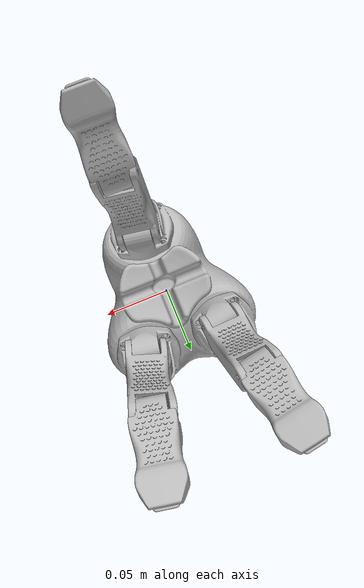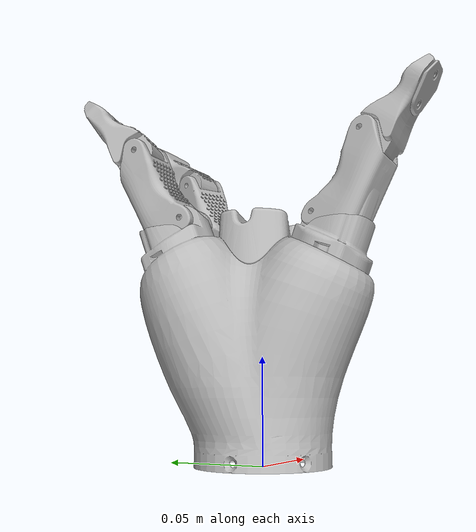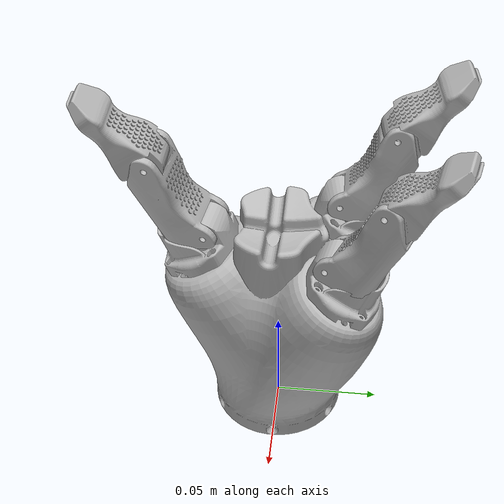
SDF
<sdf version='1.4'>
  <model name='kinova_kg3'>
    <link name='jaco_link_hand'>
      <pose>0 0 0 0 -0 0</pose>
      <inertial>
        <pose>-0.000227691 0.00425469 0.0759514 0 -0 0</pose>
        <mass>0.49</mass>
        <inertia>
          <ixx>0.000215057</ixx>
          <ixy>1.82062e-08</ixy>
          <ixz>1.11116e-07</ixz>
          <iyy>0.00018746</iyy>
          <iyz>1.20191e-06</iyz>
          <izz>0.000158164</izz>
        </inertia>
      </inertial>
      <collision name='jaco_link_hand_collision'>
        <pose>0 0 0 0 -0 0</pose>
        <geometry>
          <mesh>
            <scale>1 1 1</scale>
            <uri>model://kinova_kg3/meshes/jaco_link_hand.STL</uri>
          </mesh>
        </geometry>
        <surface>
          <contact>
            <ode/>
          </contact>
          <friction>
            <ode/>
          </friction>
        </surface>
      </collision>
      <visual name='jaco_link_hand_visual'>
        <pose>0 0 0 0 -0 0</pose>
        <geometry>
          <mesh>
            <scale>1 1 1</scale>
            <uri>model://kinova_kg3/meshes/jaco_link_hand.STL</uri>
          </mesh>
        </geometry>
      </visual>
      <gravity>1</gravity>
      <velocity_decay>
        <linear>0</linear>
        <angular>0</angular>
      </velocity_decay>
      <self_collide>0</self_collide>
    </link>
    <link name='jaco_link_finger_1'>
      <pose>0.00228309 -0.0312567 0.11443 1.57925 -0.980345 -1.60227</pose>
      <inertial>
        <pose>0.0208281 -0.00622581 -1.06167e-07 0 -0 0</pose>
        <mass>0.05</mass>
        <inertia>
          <ixx>1.04332e-06</ixx>
          <ixy>1.35201e-07</ixy>
          <ixz>-1.63982e-11</ixz>
          <iyy>2.40167e-06</iyy>
          <iyz>-2.0631e-12</iyz>
          <izz>2.18919e-06</izz>
        </inertia>
      </inertial>
      <collision name='jaco_link_finger_1_collision'>
        <pose>0 0 0 0 -0 0</pose>
        <geometry>
          <mesh>
            <scale>1 1 1</scale>
            <uri>model://kinova_kg3/meshes/jaco_link_finger_2.STL</uri>
          </mesh>
        </geometry>
        <surface>
          <contact>
            <ode>
              <kp>1e+06</kp>
              <kd>1</kd>
            </ode>
          </contact>
          <friction>
            <ode>
              <mu>500</mu>
              <mu2>500</mu2>
            </ode>
          </friction>
        </surface>
      </collision>
      <visual name='jaco_link_finger_1_visual'>
        <pose>0 0 0 0 -0 0</pose>
        <geometry>
          <mesh>
            <scale>1 1 1</scale>
            <uri>model://kinova_kg3/meshes/jaco_link_finger_2.STL</uri>
          </mesh>
        </geometry>
      </visual>
      <gravity>0</gravity>
      <velocity_decay>
        <linear>0</linear>
        <angular>0</angular>
      </velocity_decay>
      <self_collide>0</self_collide>
    </link>
    <joint name='jaco_joint_finger_1' type='revolute'>
      <child>jaco_link_finger_1</child>
      <parent>jaco_link_hand</parent>
      <axis>
        <xyz>-0.99969 0.0244463 -0.004708</xyz>
        <limit>
          <lower>0</lower>
          <upper>0.872665</upper>
          <effort>30</effort>
          <velocity>5</velocity>
        </limit>
        <dynamics/>
      </axis>
      <physics>
        <provide_feedback>1</provide_feedback>
        <ode>
          <provide_feedback>1</provide_feedback>
          <fudge_factor>1</fudge_factor>
          <limit>
            <cfm>0</cfm>
            <erp>0.2</erp>
          </limit>
        </ode>
      </physics>
    </joint>
    <link name='jaco_link_finger_tip_1'>
      <pose>0.00151043 -0.0557978 0.151066 1.57925 -0.980345 -1.60227</pose>
      <inertial>
        <pose>0.0140499 -0.00605434 2.02852e-07 0 -0 0</pose>
        <mass>0.03</mass>
        <inertia>
          <ixx>6.83326e-07</ixx>
          <ixy>-2.81123e-07</ixy>
          <ixz>-7.46392e-12</ixz>
          <iyy>2.46927e-06</iyy>
          <iyz>1.87459e-11</iyz>
          <izz>2.36577e-06</izz>
        </inertia>
      </inertial>
      <collision name='jaco_link_finger_tip_1_collision'>
        <pose>0 0 0 0 -0 0</pose>
        <geometry>
          <mesh>
            <scale>1 1 1</scale>
            <uri>model://kinova_kg3/meshes/jaco_link_finger_tip_2.STL</uri>
          </mesh>
        </geometry>
        <surface>
          <contact>
            <ode>
              <kp>1e+07</kp>
              <kd>1</kd>
            </ode>
          </contact>
          <friction>
            <ode>
              <mu>500</mu>
              <mu2>500</mu2>
            </ode>
          </friction>
        </surface>
      </collision>
      <visual name='jaco_link_finger_tip_1_visual'>
        <pose>0 0 0 0 -0 0</pose>
        <geometry>
          <mesh>
            <scale>1 1 1</scale>
            <uri>model://kinova_kg3/meshes/jaco_link_finger_tip_2.STL</uri>
          </mesh>
        </geometry>
      </visual>
      <gravity>0</gravity>
      <velocity_decay>
        <linear>0</linear>
        <angular>0</angular>
      </velocity_decay>
      <self_collide>0</self_collide>
      <sensor name='jaco_link_finger_tip_1_contact_sensor' type='contact'>
        <update_rate>100</update_rate>
        <contact>
          <collision>jaco_link_finger_tip_1_collision</collision>
          <topic>__default_topic__</topic>
        </contact>
        <plugin name='jaco_link_finger_tip_1_gazebo_ros_bumper_controller' filename='libgazebo_ros_bumper.so'>
          <alwaysOn>true</alwaysOn>
          <frameName>jaco_link_finger_tip_1</frameName>
          <updateRate>100.0</updateRate>
          <bumperTopicName>jaco_link_finger_tip_1_bumper</bumperTopicName>
        </plugin>
      </sensor>
    </link>
    <joint name='jaco_joint_finger_tip_1' type='revolute'>
      <child>jaco_link_finger_tip_1</child>
      <parent>jaco_link_finger_1</parent>
      <axis>
        <xyz>-0.99969 0.0244463 -0.004708</xyz>
        <limit>
          <lower>0</lower>
          <upper>0.872665</upper>
          <effort>30</effort>
          <velocity>5</velocity>
        </limit>
        <dynamics/>
      </axis>
      <physics>
        <provide_feedback>1</provide_feedback>
        <ode>
          <provide_feedback>1</provide_feedback>
          <fudge_factor>1</fudge_factor>
          <limit>
            <cfm>0</cfm>
            <erp>0.2</erp>
          </limit>
        </ode>
      </physics>
    </joint>
    <link name='jaco_link_finger_2'>
      <pose>0.0216845 0.0270991 0.114669 1.56248 -0.979965 1.39417</pose>
      <inertial>
        <pose>0.0208281 -0.00622581 -1.06167e-07 0 -0 0</pose>
        <mass>0.05</mass>
        <inertia>
          <ixx>1.04332e-06</ixx>
          <ixy>1.35201e-07</ixy>
          <ixz>-1.63982e-11</ixz>
          <iyy>2.40167e-06</iyy>
          <iyz>-2.0631e-12</iyz>
          <izz>2.18919e-06</izz>
        </inertia>
      </inertial>
      <collision name='jaco_link_finger_2_collision'>
        <pose>0 0 0 0 -0 0</pose>
        <geometry>
          <mesh>
            <scale>1 1 1</scale>
            <uri>model://kinova_kg3/meshes/jaco_link_finger_2.STL</uri>
          </mesh>
        </geometry>
        <surface>
          <contact>
            <ode>
              <kp>1e+06</kp>
              <kd>1</kd>
            </ode>
          </contact>
          <friction>
            <ode>
              <mu>500</mu>
              <mu2>500</mu2>
            </ode>
          </friction>
        </surface>
      </collision>
      <visual name='jaco_link_finger_2_visual'>
        <pose>0 0 0 0 -0 0</pose>
        <geometry>
          <mesh>
            <scale>1 1 1</scale>
            <uri>model://kinova_kg3/meshes/jaco_link_finger_2.STL</uri>
          </mesh>
        </geometry>
      </visual>
      <gravity>0</gravity>
      <velocity_decay>
        <linear>0</linear>
        <angular>0</angular>
      </velocity_decay>
      <self_collide>0</self_collide>
    </link>
    <joint name='jaco_joint_finger_2' type='revolute'>
      <child>jaco_link_finger_2</child>
      <parent>jaco_link_hand</parent>
      <axis>
        <xyz>0.983195 -0.1825 0.00463032</xyz>
        <limit>
          <lower>0</lower>
          <upper>0.872665</upper>
          <effort>30</effort>
          <velocity>5</velocity>
        </limit>
        <dynamics/>
      </axis>
      <physics>
        <provide_feedback>1</provide_feedback>
        <ode>
          <provide_feedback>1</provide_feedback>
          <fudge_factor>1</fudge_factor>
          <limit>
            <cfm>0</cfm>
            <erp>0.2</erp>
          </limit>
        </ode>
      </physics>
    </joint>
    <link name='jaco_link_finger_tip_2'>
      <pose>0.0260012 0.0512841 0.151295 1.56248 -0.979965 1.39417</pose>
      <inertial>
        <pose>0.0140499 -0.00605434 2.02852e-07 0 -0 0</pose>
        <mass>0.03</mass>
        <inertia>
          <ixx>6.83326e-07</ixx>
          <ixy>-2.81123e-07</ixy>
          <ixz>-7.46392e-12</ixz>
          <iyy>2.46927e-06</iyy>
          <iyz>1.87459e-11</iyz>
          <izz>2.36577e-06</izz>
        </inertia>
      </inertial>
      <collision name='jaco_link_finger_tip_2_collision'>
        <pose>0 0 0 0 -0 0</pose>
        <geometry>
          <mesh>
            <scale>1 1 1</scale>
            <uri>model://kinova_kg3/meshes/jaco_link_finger_tip_2.STL</uri>
          </mesh>
        </geometry>
        <surface>
          <contact>
            <ode>
              <kp>1e+07</kp>
              <kd>1</kd>
            </ode>
          </contact>
          <friction>
            <ode>
              <mu>500</mu>
              <mu2>500</mu2>
            </ode>
          </friction>
        </surface>
      </collision>
      <visual name='jaco_link_finger_tip_2_visual'>
        <pose>0 0 0 0 -0 0</pose>
        <geometry>
          <mesh>
            <scale>1 1 1</scale>
            <uri>model://kinova_kg3/meshes/jaco_link_finger_tip_2.STL</uri>
          </mesh>
        </geometry>
      </visual>
      <gravity>0</gravity>
      <velocity_decay>
        <linear>0</linear>
        <angular>0</angular>
      </velocity_decay>
      <self_collide>0</self_collide>
      <sensor name='jaco_link_finger_tip_2_contact_sensor' type='contact'>
        <update_rate>100</update_rate>
        <contact>
          <collision>jaco_link_finger_tip_2_collision</collision>
          <topic>__default_topic__</topic>
        </contact>
        <plugin name='jaco_link_finger_tip_2_gazebo_ros_bumper_controller' filename='libgazebo_ros_bumper.so'>
          <alwaysOn>true</alwaysOn>
          <frameName>jaco_link_finger_tip_2</frameName>
          <updateRate>100.0</updateRate>
          <bumperTopicName>jaco_link_finger_tip_2_bumper</bumperTopicName>
        </plugin>
      </sensor>
    </link>
    <joint name='jaco_joint_finger_tip_2' type='revolute'>
      <child>jaco_link_finger_tip_2</child>
      <parent>jaco_link_finger_2</parent>
      <axis>
        <xyz>0.983195 -0.1825 0.00463032</xyz>
        <limit>
          <lower>0</lower>
          <upper>0.872665</upper>
          <effort>30</effort>
          <velocity>5</velocity>
        </limit>
        <dynamics/>
      </axis>
      <physics>
        <provide_feedback>1</provide_feedback>
        <ode>
          <provide_feedback>1</provide_feedback>
          <fudge_factor>1</fudge_factor>
          <limit>
            <cfm>0</cfm>
            <erp>0.2</erp>
          </limit>
        </ode>
      </physics>
    </joint>
    <link name='jaco_link_finger_3'>
      <pose>-0.0228266 0.0270473 0.11446 1.56251 -0.978235 1.76353</pose>
      <inertial>
        <pose>0.0208281 -0.00622581 -1.06167e-07 0 -0 0</pose>
        <mass>0.05</mass>
        <inertia>
          <ixx>1.04332e-06</ixx>
          <ixy>1.35201e-07</ixy>
          <ixz>-1.63982e-11</ixz>
          <iyy>2.40167e-06</iyy>
          <iyz>-2.0631e-12</iyz>
          <izz>2.18919e-06</izz>
        </inertia>
      </inertial>
      <collision name='jaco_link_finger_3_collision'>
        <pose>0 0 0 0 -0 0</pose>
        <geometry>
          <mesh>
            <scale>1 1 1</scale>
            <uri>model://kinova_kg3/meshes/jaco_link_finger_2.STL</uri>
          </mesh>
        </geometry>
        <surface>
          <contact>
            <ode>
              <kp>1e+06</kp>
              <kd>1</kd>
            </ode>
          </contact>
          <friction>
            <ode>
              <mu>500</mu>
              <mu2>500</mu2>
            </ode>
          </friction>
        </surface>
      </collision>
      <visual name='jaco_link_finger_3_visual'>
        <pose>0 0 0 0 -0 0</pose>
        <geometry>
          <mesh>
            <scale>1 1 1</scale>
            <uri>model://kinova_kg3/meshes/jaco_link_finger_2.STL</uri>
          </mesh>
        </geometry>
      </visual>
      <gravity>0</gravity>
      <velocity_decay>
        <linear>0</linear>
        <angular>0</angular>
      </velocity_decay>
      <self_collide>0</self_collide>
    </link>
    <joint name='jaco_joint_finger_3' type='revolute'>
      <child>jaco_link_finger_3</child>
      <parent>jaco_link_hand</parent>
      <axis>
        <xyz>0.982767 0.184788 0.00462831</xyz>
        <limit>
          <lower>0</lower>
          <upper>0.872665</upper>
          <effort>30</effort>
          <velocity>5</velocity>
        </limit>
        <dynamics/>
      </axis>
      <physics>
        <provide_feedback>1</provide_feedback>
        <ode>
          <provide_feedback>1</provide_feedback>
          <fudge_factor>1</fudge_factor>
          <limit>
            <cfm>0</cfm>
            <erp>0.2</erp>
          </limit>
        </ode>
      </physics>
    </joint>
    <link name='jaco_link_finger_tip_3'>
      <pose>-0.0275444 0.0512218 0.151043 1.56251 -0.978235 1.76353</pose>
      <inertial>
        <pose>0.0140499 -0.00605434 2.02852e-07 0 -0 0</pose>
        <mass>0.03</mass>
        <inertia>
          <ixx>6.83326e-07</ixx>
          <ixy>-2.81123e-07</ixy>
          <ixz>-7.46392e-12</ixz>
          <iyy>2.46927e-06</iyy>
          <iyz>1.87459e-11</iyz>
          <izz>2.36577e-06</izz>
        </inertia>
      </inertial>
      <collision name='jaco_link_finger_tip_3_collision'>
        <pose>0 0 0 0 -0 0</pose>
        <geometry>
          <mesh>
            <scale>1 1 1</scale>
            <uri>model://kinova_kg3/meshes/jaco_link_finger_tip_2.STL</uri>
          </mesh>
        </geometry>
        <surface>
          <contact>
            <ode>
              <kp>1e+07</kp>
              <kd>1</kd>
            </ode>
          </contact>
          <friction>
            <ode>
              <mu>500</mu>
              <mu2>500</mu2>
            </ode>
          </friction>
        </surface>
      </collision>
      <visual name='jaco_link_finger_tip_3_visual'>
        <pose>0 0 0 0 -0 0</pose>
        <geometry>
          <mesh>
            <scale>1 1 1</scale>
            <uri>model://kinova_kg3/meshes/jaco_link_finger_tip_2.STL</uri>
          </mesh>
        </geometry>
      </visual>
      <gravity>0</gravity>
      <velocity_decay>
        <linear>0</linear>
        <angular>0</angular>
      </velocity_decay>
      <self_collide>0</self_collide>
      <sensor name='jaco_link_finger_tip_3_contact_sensor' type='contact'>
        <update_rate>100</update_rate>
        <contact>
          <collision>jaco_link_finger_tip_3_collision</collision>
          <topic>__default_topic__</topic>
        </contact>
        <plugin name='jaco_link_finger_tip_3_gazebo_ros_bumper_controller' filename='libgazebo_ros_bumper.so'>
          <alwaysOn>true</alwaysOn>
          <frameName>jaco_link_finger_tip_3</frameName>
          <updateRate>100.0</updateRate>
          <bumperTopicName>jaco_link_finger_tip_3_bumper</bumperTopicName>
        </plugin>
      </sensor>
    </link>
    <joint name='jaco_joint_finger_tip_3' type='revolute'>
      <child>jaco_link_finger_tip_3</child>
      <parent>jaco_link_finger_3</parent>
      <axis>
        <xyz>0.982767 0.184788 0.00462831</xyz>
        <limit>
          <lower>0</lower>
          <upper>0.872665</upper>
          <effort>30</effort>
          <velocity>5</velocity>
        </limit>
        <dynamics/>
      </axis>
      <physics>
        <provide_feedback>1</provide_feedback>
        <ode>
          <provide_feedback>1</provide_feedback>
          <fudge_factor>1</fudge_factor>
          <limit>
            <cfm>0</cfm>
            <erp>0.2</erp>
          </limit>
        </ode>
      </physics>
    </joint>
    <plugin name='p3d_jaco_link_hand_controller' filename='libgazebo_ros_p3d.so'>
      <alwaysOn>true</alwaysOn>
      <updateRate>100.0</updateRate>
      <bodyName>jaco_link_hand</bodyName>
      <topicName>jaco_link_hand_pose_ground_truth</topicName>
      <xyzOffsets>0 0 0</xyzOffsets>
      <rpyOffsets>0 0 0</rpyOffsets>
      <gaussianNoise>0.0</gaussianNoise>
      <frameName>map</frameName>
    </plugin>
    <gripper name='kionva_kg3_grasp_hack'>
      <grasp_check>
        <attach_steps>20</attach_steps>
        <detach_steps>40</detach_steps>
        <min_contact_count>2</min_contact_count>
      </grasp_check>
      <gripper_link>jaco_link_finger_tip_1</gripper_link>
      <gripper_link>jaco_link_finger_tip_2</gripper_link>
      <gripper_link>jaco_link_finger_tip_3</gripper_link>
      <palm_link>jaco_link_hand</palm_link>
    </gripper>
    <static>0</static>
    <plugin name='gazebo_ros_control' filename='libgazebo_ros_control.so'>
      <robotNamespace>kinova_kg3</robotNamespace>
    </plugin>
  </model>
</sdf>
